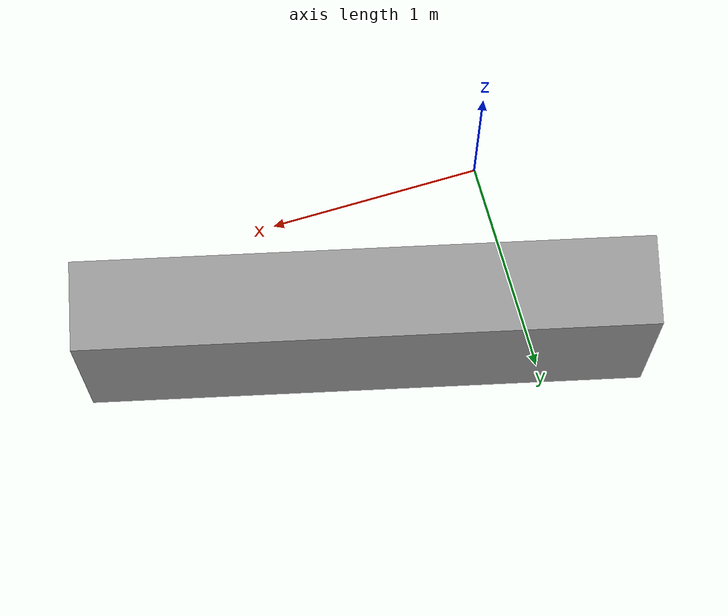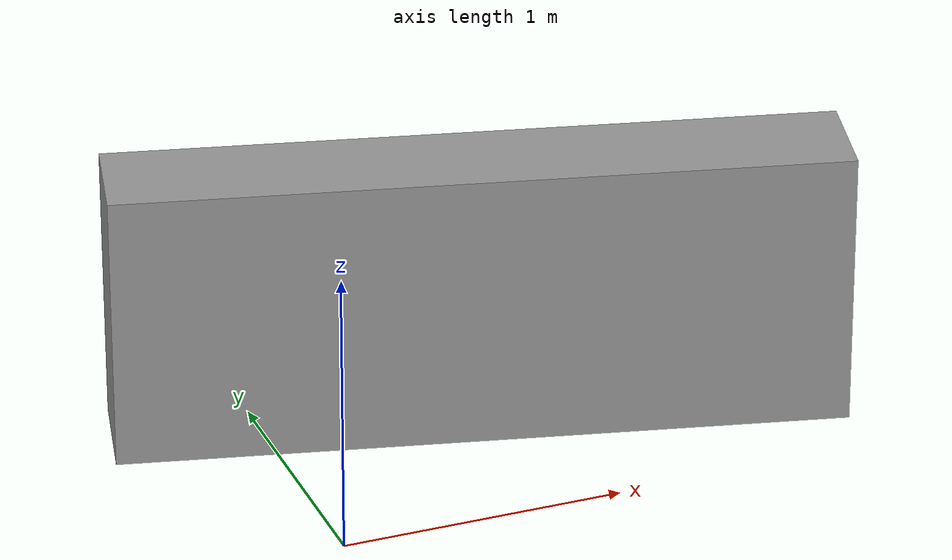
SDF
<sdf version='1.5'>
  <world name='room1'>
    <light name='sun' type='directional'>
      <cast_shadows>1</cast_shadows>
      <pose frame=''>0 0 10 0 -0 0</pose>
      <diffuse>0.8 0.8 0.8 1</diffuse>
      <specular>0.2 0.2 0.2 1</specular>
      <attenuation>
        <range>1000</range>
        <constant>0.9</constant>
        <linear>0.01</linear>
        <quadratic>0.001</quadratic>
      </attenuation>
      <direction>-0.5 0.1 -0.9</direction>
    </light>
    <physics name='default_physics' default='0' type='ode'>
      <max_step_size>0.001</max_step_size>
      <real_time_factor>1</real_time_factor>
      <real_time_update_rate>1000</real_time_update_rate>
      <gravity>0 0 -9.8</gravity>
      <magnetic_field>5.5645e-06 2.28758e-05 -4.23884e-05</magnetic_field>
    </physics>
    <scene>
      <ambient>0.4 0.4 0.4 1</ambient>
      <background>0.7 0.7 0.7 1</background>
      <shadows>1</shadows>
    </scene>
    <model name='floor'>
      <pose frame=''>6.95335e-310 6.95335e-310 3.47668e-310 0 0 6.95335e-310 </pose>
      <static>1</static>
      <link name='link'>
        <inertial>
          <mass>1</mass>
          <inertia>
            <ixx>1</ixx>
            <ixy>0</ixy>
            <ixz>0</ixz>
            <iyy>1</iyy>
            <iyz>0</iyz>
            <izz>1</izz>
          </inertia>
        </inertial>
        <collision name='collision'>
          <geometry>
            <box>
              <size>6.95335e-310 2.16042e-317 6.95335e-310</size>
            </box>
          </geometry>
          <max_contacts>10</max_contacts>
          <surface>
            <contact>
              <ode/>
            </contact>
            <bounce/>
            <friction>
              <ode/>
            </friction>
          </surface>
        </collision>
        <visual name='visual'>
          <geometry>
            <box>
              <size>6.95335e-310 2.16042e-317 6.95335e-310</size>
            </box>
          </geometry>
          <material>
            <script>
              <uri>file://media/materials/scripts/gazebo.material</uri>
              <name>Gazebo/Grey</name>
            </script>
          </material>
        </visual>
        <self_collide>0</self_collide>
        <kinematic>0</kinematic>
        <gravity>0</gravity>
      </link>
    </model>
    <model name='line'>
      <pose frame=''>0.75 0.7 0.5 0 0 1.33525 </pose>
      <static>1</static>
      <link name='link'>
        <inertial>
          <mass>1</mass>
          <inertia>
            <ixx>1</ixx>
            <ixy>0</ixy>
            <ixz>0</ixz>
            <iyy>1</iyy>
            <iyz>0</iyz>
            <izz>1</izz>
          </inertia>
        </inertial>
        <collision name='collision'>
          <geometry>
            <box>
              <size>0.4 2.57099 1</size>
            </box>
          </geometry>
          <max_contacts>10</max_contacts>
          <surface>
            <contact>
              <ode/>
            </contact>
            <bounce/>
            <friction>
              <ode/>
            </friction>
          </surface>
        </collision>
        <visual name='visual'>
          <geometry>
            <box>
              <size>0.4 2.57099 1</size>
            </box>
          </geometry>
          <material>
            <script>
              <uri>file://media/materials/scripts/gazebo.material</uri>
              <name>Gazebo/Grey</name>
            </script>
          </material>
        </visual>
        <self_collide>0</self_collide>
        <kinematic>0</kinematic>
        <gravity>0</gravity>
      </link>
    </model>
  </world>
</sdf>
